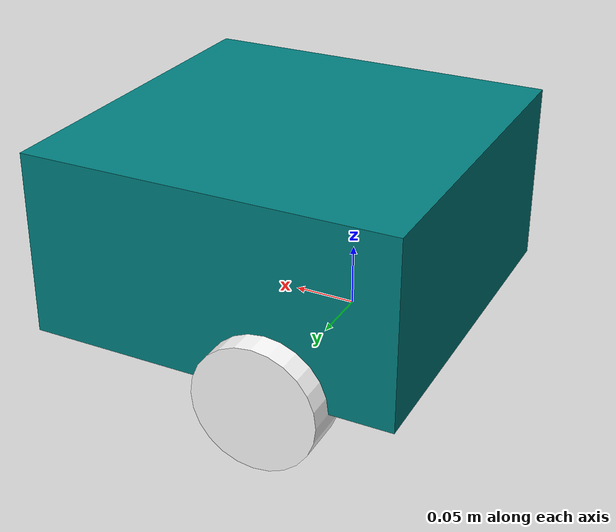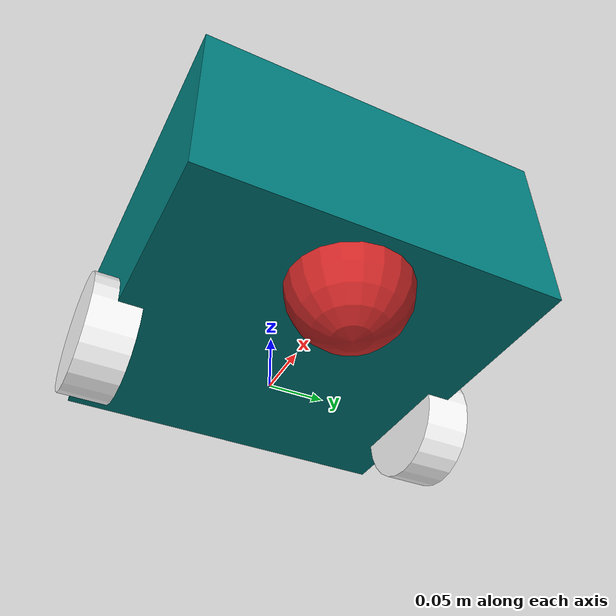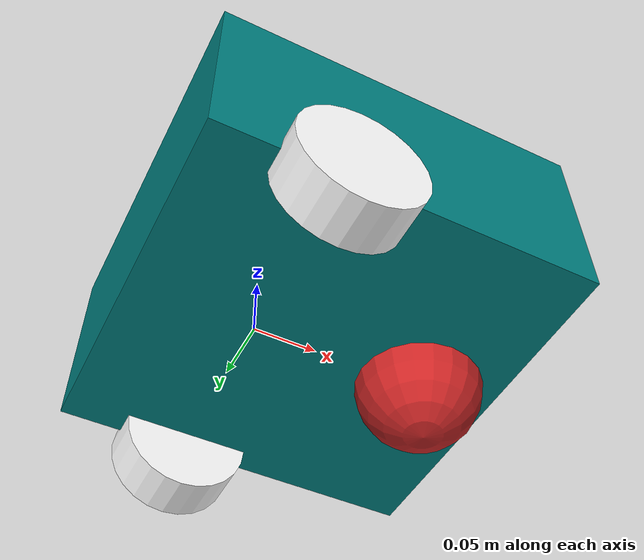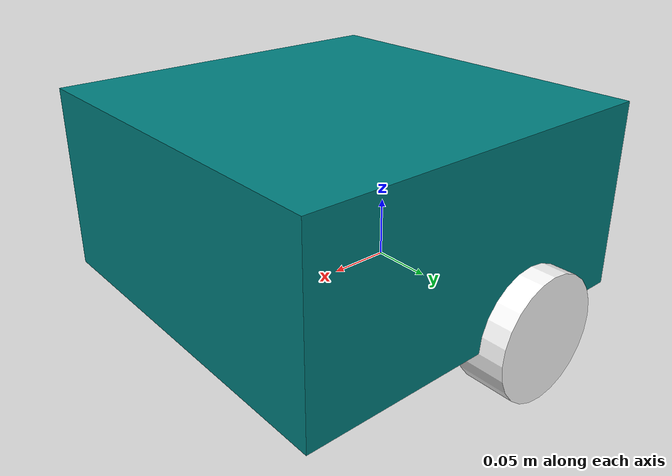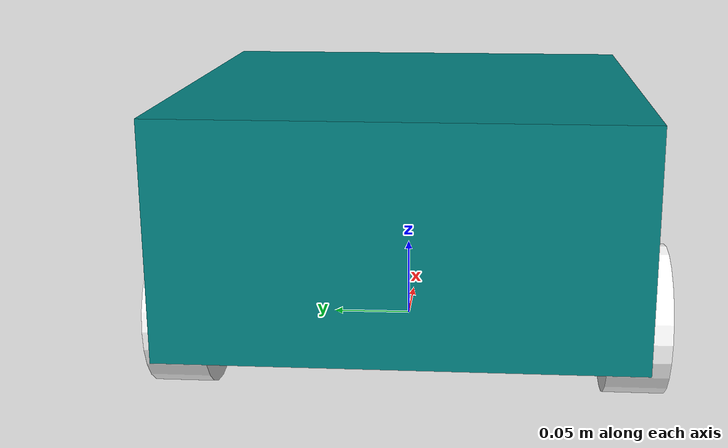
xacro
<?xml version="1.0" encoding="UTF-8"?>
<robot xmlns:xacro="http://wiki.ros.org/xacro" name="robot_1">

  <!-- Use this if parameters are set from the launch file, otherwise delete -->
  <xacro:arg name="prefix" default="" />

  <xacro:include filename="$(find tutorial_robot_1)/urdf/robot_1/robot_1_macro.ros2_control.xacro"/>
  <xacro:include filename="$(find tutorial_robot_1)/urdf/robot_1/robot_1_macro.xacro"/>

  <!-- Load robot's macro with parameters -->
  <!-- set prefix if multiple robots are used -->
  <xacro:robot_1 prefix="$(arg prefix)">
    <origin xyz="0 0 0" rpy="0 0 0" />          <!-- position robot in the world -->
  </xacro:robot_1>

</robot>

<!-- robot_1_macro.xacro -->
<robot xmlns:xacro="http://wiki.ros.org/xacro">

  <xacro:include filename="$(find tutorial_robot_1)/urdf/common.xacro" />

  <xacro:macro name="robot_1" params="prefix *origin">

    <!-- BASE LINK -->

    <link name="${prefix}base_link">
    </link>

    <!-- CHASSIS LINK -->

    <link name="${prefix}chassis_link">
      <visual>
        <origin xyz="0.15 0 0.075"/>
        <geometry>
          <box size="0.3 0.3 0.15"/>
        </geometry>
        <xacro:teal_color/>
      </visual>

      <collision>
        <origin xyz="0.15 0 0.075"/>
        <geometry>
          <box size="0.3 0.3 0.15"/>
        </geometry>
      </collision>

      <xacro:box_inertial mass="0.5" x="0.3" y="0.3" z="0.15">
        <origin xyz="0.15 0 0.075" rpy="0 0 0"/>
      </xacro:box_inertial>

    </link>

    <joint name="${prefix}chassis_joint" type="fixed">
      <parent link="${prefix}base_link"/>
      <child link="${prefix}chassis_link"/>
      <origin xyz="-0.1 0 0"/>
    </joint>

    <gazebo reference="chassis_link">
      <material>Gazebo/Turquoise</material>
    </gazebo>

    <!-- LEFT WHEEL LINK-->

    <link name="${prefix}left_wheel_link">
      <visual>
        <geometry>
          <cylinder length="0.04" radius="0.05"/>
        </geometry>
        <xacro:white_color/>
      </visual>

      <xacro:cylinder_inertial mass="0.1" length="0.04" radius="0.05">
        <origin xyz="0 0 0" rpy="0 0 0"/>
      </xacro:cylinder_inertial>

      <collision>
        <geometry>
          <cylinder length="0.04" radius="0.05"/>
        </geometry>
      </collision>
    </link>

    <joint name="${prefix}left_wheel_joint" type="continuous">
      <parent link="${prefix}base_link"/>
      <child link="${prefix}left_wheel_link"/>
      <origin xyz="0 0.15 0" rpy="${-pi/2} 0 0"/>
      <axis xyz="0 0 1"/>
    </joint>

    <gazebo reference="left_wheel_link">
      <material>Gazebo/White</material>
    </gazebo>

    <!-- RIGHT WHEEL LINK-->

    <link name="${prefix}right_wheel_link">
      <visual>
        <geometry>
          <cylinder length="0.04" radius="0.05"/>
        </geometry>
        <xacro:white_color/>
      </visual>

      <xacro:cylinder_inertial mass="0.1" length="0.04" radius="0.05">
        <origin xyz="0 0 0" rpy="0 0 0"/>
      </xacro:cylinder_inertial>

      <collision>
        <geometry>
          <cylinder length="0.04" radius="0.05"/>
        </geometry>
      </collision>
    </link>

    <joint name="${prefix}right_wheel_joint" type="continuous">
      <parent link="${prefix}base_link"/>
      <child link="${prefix}right_wheel_link"/>
      <origin xyz="0 -0.15 0" rpy="${pi/2} 0 0"/>
      <axis xyz="0 0 -1"/>
    </joint>

    <gazebo reference="right_wheel_link">
      <material>Gazebo/White</material>
    </gazebo>

    <!-- CASTER WHEEL LINK -->

    <link name="${prefix}caster_wheel_link">
      <visual>
        <geometry>
          <sphere radius="0.05"/>
        </geometry>
      </visual>

      <xacro:sphere_inertial mass="0.1" radius="0.05">
        <origin xyz="0 0 0" rpy="0 0 0"/>
      </xacro:sphere_inertial>

      <collision>
        <geometry>
          <sphere radius="0.05"/>
        </geometry>
      </collision>
    </link>

    <joint name="${prefix}caster_wheel_joint" type="fixed">
      <parent link="${prefix}chassis_link"/>
      <child link="${prefix}caster_wheel_link"/>
      <origin xyz="0.24 0 0"/>
    </joint>

    <gazebo reference="caster_wheel_link">
      <material>Gazebo/Red</material>
        <mu1 value="0.001"/>
        <mu2 value="0.001"/>
    </gazebo>

  </xacro:macro>
</robot>

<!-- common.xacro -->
<robot xmlns:xacro="http://www.ros.org/wiki/xacro">

  <!-- see https://secure.wikimedia.org/wikipedia/en/wiki/List_of_moment_of_inertia_tensors -->
  <xacro:macro name="sphere_inertial" params="radius mass *origin">
    <inertial>
      <mass value="${mass}" />
      <xacro:insert_block name="origin" />
      <inertia ixx="${2.0/5 * mass * radius * radius}" ixy="0.0" ixz="0.0"
        iyy="${2.0/5 * mass * radius * radius}" iyz="0.0"
        izz="${2.0/5 * mass * radius * radius}" />
    </inertial>
  </xacro:macro>

  <xacro:macro name="cylinder_inertial" params="radius length mass *origin">
    <inertial>
      <mass value="${mass}" />
      <xacro:insert_block name="origin" />
      <inertia ixx="${1.0/12 * mass * (3 * radius * radius + length * length)}" ixy="0.0" ixz="0.0"
        iyy="${1.0/12 * mass * (3 * radius * radius + length * length)}" iyz="0.0"
        izz="${1.0/2 * mass * radius * radius}" />
    </inertial>
  </xacro:macro>

  <xacro:macro name="box_inertial" params="x y z mass *origin">
    <inertial>
      <mass value="${mass}" />
      <xacro:insert_block name="origin" />
      <inertia ixx="${1.0/12 * mass * (y*y + z*z)}" ixy="0.0" ixz="0.0"
        iyy="${1.0/12 * mass * (x*x + z*z)}" iyz="0.0"
        izz="${1.0/12 * mass * (x*x + y*y)}" />
    </inertial>
  </xacro:macro>

  <xacro:macro name="spherical_cap_inertial" params="r h mass *origin">
    <inertial>
      <mass value="${mass}" />
      <xacro:insert_block name="origin" />
      <inertia ixx="${(-3*h*h*h/20+3*h*h*r/4-4*h*r*r/3+r*r*r)*3*mass/(3*r-h)+(3/4*(h-2*r)*(h-2*r)/(3*r-h))*(3/4*(h-2*r)*(h-2*r)/(3*r-h))}" ixy="0.0" ixz="0.0"
        iyy="${(-3*h*h*h/20+3*h*h*r/4-4*h*r*r/3+r*r*r)*3*mass/(3*r-h)+(3/4*(h-2*r)*(h-2*r)/(3*r-h))*(3/4*(h-2*r)*(h-2*r)/(3*r-h))}" iyz="0.0"
        izz="${mass*h/(10*(3*r-h))*(3*h*h-15*h*r+20*r*r)}" />
      <origin></origin>
    </inertial>
  </xacro:macro>

  <xacro:macro name="hollow_spherical_cap_inertial" params="r h t mass *origin">
    <inertial>
      <mass value="${mass}" />
      <xacro:insert_block name="origin" />
      <inertia ixx="${mass/20*(20*h*h*h*r-10*h*h*h*t-60*h*h*r*r+30*h*h*r*t+120*h*r*r*r-120*h*r*r*t+60*h*r*t*t-15*h*t*t*t-60*r*r*r*t+100*r*r*t*t-65*r*t*t*t+16*t*t*t*t)/(2*t*t*-3*r*t-3*h*t+6*h*r)+(3/4*(t-2*r)*(2*r*r-4*r*r+2*r*t-t*t)/(6*r*r-3*r*t-3*r*t+2*t*t))*(3/4*(t-2*r)*(2*r*r-4*r*r+2*r*t-t*t)/(6*r*r-3*r*t-3*r*t+2*t*t))}" ixy="0.0" ixz="0.0"
        iyy="${mass/20*(20*h*h*h*r-10*h*h*h*t-60*h*h*r*r+30*h*h*r*t+120*h*r*r*r-120*h*r*r*t+60*h*r*t*t-15*h*t*t*t-60*r*r*r*t+100*r*r*t*t-65*r*t*t*t+16*t*t*t*t)/(2*t*t*-3*r*t-3*h*t+6*h*r)+(3/4*(t-2*r)*(2*r*r-4*r*r+2*r*t-t*t)/(6*r*r-3*r*t-3*r*t+2*t*t))*(3/4*(t-2*r)*(2*r*r-4*r*r+2*r*t-t*t)/(6*r*r-3*r*t-3*r*t+2*t*t))}" iyz="0.0"
        izz="${mass/(10*(2*t*t-3*r*t-3*h*t+6*h*r))*(-20*h*h*h*r+10*h*h*h*t+60*h*h*r*r-30*h*h*r*t-60*h*r*r*t+60*h*r*t*t-15*h*t*t*t+20*r*r*t*t-25*r*t*t*t+8*t*t*t*t)}" />
    </inertial>
  </xacro:macro>

  <xacro:macro name="default_inertial">
    <inertial>
      <mass value="0.01"/>
      <origin xyz="0 0 0"/>
      <inertia ixx="0.001" ixy="0.0" ixz="0.0" iyy="0.001" iyz="0.0" izz="0.001" />
    </inertial>
  </xacro:macro>

  <xacro:macro name="white_color">
    <material name="white">
      <color rgba="1 1 1 1" />
    </material>
  </xacro:macro>

  <xacro:macro name="teal_color">
    <material name="teal">
      <color rgba="0 0.5 0.5 1" />
    </material>
  </xacro:macro>

</robot>
